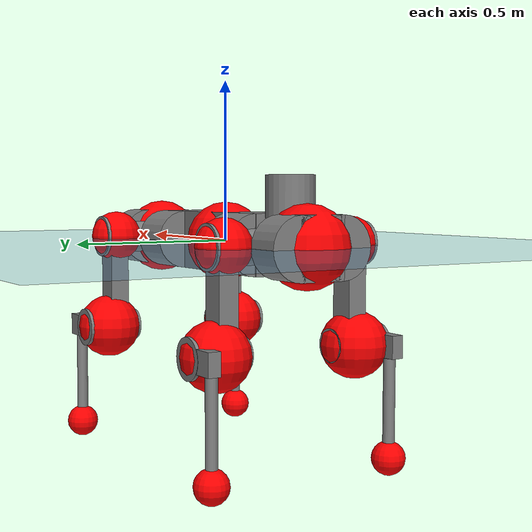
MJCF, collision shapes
<mujoco model="anymal_c">
  <compiler angle="radian" assetdir="assets" balanceinertia="true" inertiafromgeom="false"/>

  <option timestep="0.005" density="1.2" viscosity="2e-05"/>

  <size nkey="1"/>

  <visual>
    <quality shadowsize="8192"/>
    <map shadowclip="0.5"/>
  </visual>

  <default>
    <default class="/">
      <material specular="0" shininess="0.25"/>
      <geom contype="0" conaffinity="0" group="1" solref="-1000 -80"/>
      <site size="0.01 0.005 0.005" group="5"/>
      <general forcelimited="true" forcerange="-80 80" biastype="affine" gainprm="80" biasprm="0 -80 -2"/>
      <default class="anymal_c">
        <joint armature="0.01" damping="0.01" frictionloss="0.1"/>
        <default class="visual">
          <geom type="mesh" group="2"/>
          <default class="visual_zflip"/>
        </default>
        <default class="collision">
          <geom type="cylinder" group="3"/>
          <default class="foot">
            <geom size="0.03 0 0" type="sphere" condim="6" priority="1" friction="0.8 0.02 0.01" solimp="0.015 1 0.03"/>
          </default>
        </default>
      </default>
      <default class="reward_collision_sphere">
        <geom group="5" rgba="1 0 0 1"/>
      </default>
    </default>
  </default>

  <asset>
    <texture type="skybox" colorspace="auto" name="//unnamed_texture_0" builtin="gradient" rgb1="0.95 0.95 0.95" rgb2="0.95 0.95 0.95" width="100" height="600"/>
    <texture type="2d" colorspace="auto" name="texplane" builtin="checker" rgb1="0.345 0.575 0.748" rgb2="0.345 0.575 0.748" markrgb="1 1 1" width="512" height="512"/>
    <texture type="2d" colorspace="linear" name="base" file="base.png"/>
    <texture type="2d" colorspace="linear" name="top_shell" file="top_shell.png"/>
    <texture type="2d" colorspace="linear" name="bottom_shell" file="bottom_shell.png"/>
    <texture type="2d" colorspace="linear" name="remote" file="remote.png"/>
    <texture type="2d" colorspace="linear" name="hatch" file="hatch.png"/>
    <texture type="2d" colorspace="linear" name="handle" file="handle.png"/>
    <texture type="2d" colorspace="linear" name="face" file="face.png"/>
    <texture type="2d" colorspace="linear" name="battery" file="battery.png"/>
    <texture type="2d" colorspace="linear" name="lidar_cage" file="lidar_cage.png"/>
    <texture type="2d" colorspace="linear" name="depth_camera" file="depth_camera.png"/>
    <texture type="2d" colorspace="linear" name="wide_angle_camera" file="wide_angle_camera.png"/>
    <texture type="2d" colorspace="linear" name="lidar" file="lidar.png"/>
    <texture type="2d" colorspace="linear" name="drive" file="drive.png"/>
    <texture type="2d" colorspace="linear" name="hip_l" file="hip_l.png"/>
    <texture type="2d" colorspace="linear" name="shank_l" file="shank_l.png"/>
    <texture type="2d" colorspace="linear" name="foot" file="foot.png"/>
    <texture type="2d" colorspace="linear" name="thigh" file="thigh.png"/>
    <texture type="2d" colorspace="linear" name="shank_r" file="shank_r.png"/>
    <texture type="2d" colorspace="linear" name="hip_r" file="hip_r.png"/>
    <material name="MatPlane" class="/" texture="texplane" texuniform="true" texrepeat="2 2" specular="0.9" shininess="0.5"/>
    <material name="black_plastic" class="/" rgba="0.007 0.007 0.007 1"/>
    <material name="green" class="/" rgba="0.052 0.178 0.033 1"/>
    <material name="red" class="/" rgba="0.178 0.006 0.005 1"/>
    <material name="yellow" class="/" rgba="0.178 0.119 0.006 1"/>
    <material name="lwl" class="/" rgba="0.8 0.8 0.8 1"/>
    <material name="base" class="/" texture="base"/>
    <material name="top_shell" class="/" texture="top_shell"/>
    <material name="bottom_shell" class="/" texture="bottom_shell"/>
    <material name="hip_l" class="/" texture="hip_l"/>
    <material name="thigh" class="/" texture="thigh"/>
    <material name="shank_l" class="/" texture="shank_l"/>
    <material name="foot" class="/" texture="foot"/>
    <material name="hip_r" class="/" texture="hip_r"/>
    <material name="shank" class="/" texture="shank_r"/>
    <material name="hatch" class="/" texture="hatch"/>
    <material name="remote" class="/" texture="remote"/>
    <material name="handle" class="/" texture="handle"/>
    <material name="face" class="/" texture="face"/>
    <material name="depth_camera" class="/" texture="depth_camera"/>
    <material name="wide_angle_camera" class="/" texture="wide_angle_camera"/>
    <material name="battery" class="/" texture="battery"/>
    <material name="lidar_cage" class="/" texture="lidar_cage"/>
    <material name="lidar" class="/" texture="lidar"/>
    <material name="drive" class="/" texture="drive"/>
    <mesh name="base_0" class="/" file="base_0.obj"/>
    <mesh name="base_1" class="/" file="base_1.obj"/>
    <mesh name="base_2" class="/" file="base_2.obj"/>
    <mesh name="base_3" class="/" file="base_3.obj"/>
    <mesh name="base_4" class="/" file="base_4.obj"/>
    <mesh name="base_5" class="/" file="base_5.obj"/>
    <mesh name="top_shell" class="/" file="top_shell.obj"/>
    <mesh name="bottom_shell" class="/" file="bottom_shell.obj"/>
    <mesh name="remote" class="/" file="remote.obj"/>
    <mesh name="handle" class="/" file="handle.obj"/>
    <mesh name="face" class="/" file="face.obj"/>
    <mesh name="wide_angle_camera" class="/" file="wide_angle_camera.obj"/>
    <mesh name="depth_camera" class="/" file="depth_camera.obj"/>
    <mesh name="battery" class="/" file="battery.obj"/>
    <mesh name="lidar_cage" class="/" file="lidar_cage.obj"/>
    <mesh name="lidar" class="/" file="lidar.obj"/>
    <mesh name="drive" class="/" file="drive.obj"/>
    <mesh name="hip_l" class="/" file="hip_l.obj"/>
    <mesh name="thigh" class="/" file="thigh.obj"/>
    <mesh name="shank_l" class="/" file="shank_l.obj"/>
    <mesh name="foot" class="/" file="foot.obj"/>
    <mesh name="hip_r" class="/" file="hip_r.obj"/>
    <mesh name="hatch" class="/" file="hatch.obj"/>
    <mesh name="shank_r" class="/" file="shank_r.obj"/>
  </asset>

  <worldbody>
    <geom name="floor" class="/" size="100 100 0.125" type="plane" group="0" material="MatPlane"/>
    <light name="toplight_shadow" class="/" pos="0 0 5" dir="0.0990148 0.0990148 -0.990148" type="directional" ambient="0.04 0.04 0.04" diffuse="0.55 0.55 0.55" specular="0.12 0.12 0.12"/>
    <light name="toplight_fill" class="/" pos="0 0 5" dir="0.0990148 0.0990148 -0.990148" type="directional" castshadow="false" ambient="0.04 0.04 0.04" diffuse="0.3 0.3 0.3" specular="0.08 0.08 0.08"/>
    <body name="trunk" childclass="anymal_c" pos="0.000331983 -0.00237715 1.14664e-05" quat="1 -6.24175e-06 -4.6048e-07 4.00865e-05">
      <inertial pos="0.00139123 -0.00265677 0.0536897" quat="0.51072 0.496033 0.497952 0.495136" mass="19.5575" diaginertia="0.623111 0.626394 0.28257"/>
      <joint name="//unnamed_joint_0" type="free" armature="0" damping="0" frictionloss="0"/>
      <geom name="//unnamed_geom_1" class="visual" material="green" mesh="base_0"/>
      <geom name="//unnamed_geom_2" class="visual" material="yellow" mesh="base_1"/>
      <geom name="//unnamed_geom_3" class="visual" material="red" mesh="base_2"/>
      <geom name="//unnamed_geom_4" class="visual" material="black_plastic" mesh="base_3"/>
      <geom name="//unnamed_geom_5" class="visual" material="lwl" mesh="base_4"/>
      <geom name="//unnamed_geom_6" class="visual" material="base" mesh="base_5"/>
      <geom name="trunk_1" class="collision" size="0.296244 0.0715072 0.0919378" type="box"/>
      <geom name="trunk_2" class="collision" size="0.0919378 0.074061" pos="0.217686 0.0703011 0" quat="0.707107 0 0.707107 0"/>
      <geom name="trunk_3" class="collision" size="0.0919378 0.074061" pos="-0.217686 0.0703011 0" quat="0.707107 0 0.707107 0"/>
      <geom name="trunk_4" class="collision" size="0.0919378 0.074061" pos="0.217686 -0.0703011 0" quat="0.707107 0 0.707107 0"/>
      <geom name="trunk_5" class="collision" size="0.0919378 0.074061" pos="-0.217686 -0.0703011 0" quat="0.707107 0 0.707107 0"/>
      <geom name="//unnamed_geom_12" class="visual" material="top_shell" mesh="top_shell"/>
      <geom name="//unnamed_geom_13" class="visual" material="bottom_shell" mesh="bottom_shell"/>
      <geom name="//unnamed_geom_14" class="visual" material="remote" mesh="remote"/>
      <geom name="//unnamed_geom_15" class="visual" material="handle" mesh="handle"/>
      <geom name="//unnamed_geom_16" class="visual" pos="0.414854 0 0" quat="1 0 0 0" material="face" mesh="face"/>
      <geom name="trunk_6" class="collision" size="0.0561842 0.0715072 0.0919378" pos="0.469901 0 0" type="box"/>
      <geom name="//unnamed_geom_18" class="collision" size="0.0919378 0.0561842" pos="0.469901 0.0703011 0" quat="0.707107 0 0.707107 0"/>
      <geom name="//unnamed_geom_19" class="collision" size="0.0919378 0.0561842" pos="0.469901 -0.0703011 0" quat="0.707107 0 0.707107 0"/>
      <geom name="//unnamed_geom_20" class="visual" pos="0.462047 0 -0.0313808" quat="0.965926 0 0.258819 0" material="depth_camera" mesh="depth_camera"/>
      <geom name="//unnamed_geom_21" class="visual" pos="0.513438 0 0.0158598" material="wide_angle_camera" mesh="wide_angle_camera"/>
      <geom name="//unnamed_geom_22" class="visual_zflip" pos="-0.414854 0 0" quat="0 0 0 1" material="face" mesh="face"/>
      <geom name="trunk_7" class="collision" size="0.0561842 0.0715072 0.0919378" pos="-0.469901 0 0" quat="0 0 0 1" type="box"/>
      <geom name="//unnamed_geom_24" class="collision" size="0.0919378 0.0561842" pos="-0.469901 -0.0703011 0" quat="0 -0.707107 0 0.707107"/>
      <geom name="//unnamed_geom_25" class="collision" size="0.0919378 0.0561842" pos="-0.469901 0.0703011 0" quat="0 -0.707107 0 0.707107"/>
      <geom name="//unnamed_geom_26" class="visual" pos="-0.462047 0 -0.0313808" quat="0 -0.258819 0 0.965926" material="depth_camera" mesh="depth_camera"/>
      <geom name="//unnamed_geom_27" class="visual_zflip" pos="-0.513438 0 0.0158598" quat="0 0 0 1" material="wide_angle_camera" mesh="wide_angle_camera"/>
      <geom name="//unnamed_geom_28" class="visual" material="battery" mesh="battery"/>
      <geom name="//unnamed_geom_29" class="visual" pos="0 0.0768366 0.0303314" quat="0.683013 -0.183013 0.183013 0.683013" material="depth_camera" mesh="depth_camera"/>
      <geom name="//unnamed_geom_30" class="visual" pos="0 -0.0768366 0.0303314" quat="0.683013 0.183013 0.183013 -0.683013" material="depth_camera" mesh="depth_camera"/>
      <geom name="//unnamed_geom_31" class="visual" pos="-0.364311 0 0.0778686" quat="1 0 0 0" material="lidar_cage" mesh="lidar_cage"/>
      <geom name="trunk_8" class="collision" size="0.0715072 0.0612919" pos="-0.364311 0 0.141435"/>
      <geom name="//unnamed_geom_33" class="visual" pos="-0.364311 1.35471e-06 0.150652" quat="0.707107 0 0 -0.707107" material="lidar" mesh="lidar"/>
      <geom name="//unnamed_geom_34" class="visual" pos="0.300156 0.104467 -9.51075e-10" quat="0.258819 0.965926 0 0" material="drive" mesh="drive"/>
      <geom name="//unnamed_geom_35" class="visual" pos="0.300156 -0.104467 9.51075e-10" quat="0.258819 -0.965926 0 0" material="drive" mesh="drive"/>
      <geom name="//unnamed_geom_36" class="visual" pos="-0.300156 0.104467 9.51075e-10" quat="0 0 0.965926 -0.258819" material="drive" mesh="drive"/>
      <geom name="//unnamed_geom_37" class="visual" pos="-0.300156 -0.104467 -9.51075e-10" quat="0 0 -0.965926 -0.258819" material="drive" mesh="drive"/>
      <geom name="//unnamed_geom_38" class="visual" pos="0.116099 0 0.0773389" quat="1 0 0 0" material="hatch" mesh="hatch"/>
      <geom name="//unnamed_geom_39" class="reward_collision_sphere" size="0.122584"/>
      <geom name="//unnamed_geom_40" class="reward_collision_sphere" size="0.122584" pos="0.450384 0 0"/>
      <geom name="//unnamed_geom_41" class="reward_collision_sphere" size="0.122584" pos="-0.450384 0 0"/>
      <site name="imu" pos="0.260368 0.0141694 0.0371689" size="0.0102153"/>
      <camera name="track" pos="0 -2.0086 0" quat="0.707107 0.707107 0 0" mode="trackcom"/>
      <camera name="ego_camera" pos="0.450384 0 -0.0423775" quat="-0.5 -0.5 0.5 0.5"/>
      <body name="LF_HIP" pos="0.302434 0.10745 0.00284896" quat="0.258308 0.966062 0.00103757 -2.1263e-06">
        <inertial pos="0.0574389 -0.014953 -0.00816459" quat="-0.12732 0.709295 -0.135003 0.680048" mass="2.85988" diaginertia="0.00587282 0.00481877 0.00440387"/>
        <joint name="LF_HAA" pos="0 0 0" axis="0.999996 -0.00249967 -0.00150383" range="-0.669521 0.502456" armature="0.00988127" damping="0" frictionloss="0.111461"/>
        <geom name="//unnamed_geom_42" class="visual" pos="0 -5.59474e-05 9.18932e-06" quat="0.258819 -0.965926 0 0" material="hip_l" mesh="hip_l"/>
        <geom name="//unnamed_geom_43" class="visual" pos="0.0599511 -0.0727086 -0.0423861" quat="0.183013 -0.683013 0.683013 0.183013" material="drive" mesh="drive"/>
        <geom name="//unnamed_geom_44" class="collision" size="0.0510765 0.0715072" pos="0.0599511 -0.0120113 -0.00731541" quat="-0.353553 -0.612372 0.612372 -0.353553"/>
        <body name="LF_THIGH" pos="0.0600576 -0.0706932 -0.0439221" quat="0.183799 -0.68253 0.683407 0.182552">
          <inertial pos="0.0331336 0.00144619 -0.261001" quat="0.992617 -0.0179233 -0.0815221 0.0880069" mass="3.27213" diaginertia="0.0305367 0.0308113 0.00567899"/>
          <joint name="LF_HFE" pos="0 0 0" axis="0.99993 0.003209 -0.0113678" range="-3.13791 3.19378" armature="0.011511" damping="0.0015687" frictionloss="0.10053"/>
          <geom name="//unnamed_geom_45" class="visual" pos="-6.86056e-05 -1.08106e-07 0" quat="0.707107 0 0 -0.707107" material="thigh" mesh="thigh"/>
          <geom name="//unnamed_geom_46" class="collision" size="0.0663995 0.0408612" pos="0.0400342 0 0" quat="0.5 0.5 -0.5 -0.5"/>
          <geom name="//unnamed_geom_47" class="collision" size="0.0383074 0.0306459 0.144357" pos="0.0300256 0 -0.149713" quat="0.707107 0 0 -0.707107" type="box"/>
          <geom name="//unnamed_geom_48" class="visual" pos="0.100386 0 -0.301939" quat="1 0 0 0" material="drive" mesh="drive"/>
          <geom name="//unnamed_geom_49" class="collision" size="0.0510765 0.0715072" pos="0.0303259 0 -0.301939" quat="0.707107 0 0.707107 0"/>
          <geom name="//unnamed_geom_50" class="reward_collision_sphere" size="0.0817225" pos="0.0250213 0 0"/>
          <body name="LF_SHANK" pos="0.101394 -0.00290498 -0.302535" quat="1 1.54231e-05 -0.000351892 -0.00043358">
            <inertial pos="0.00719596 -0.0613997 -0.088126" quat="0.993007 -0.115082 -0.0021459 -0.0262296" mass="0.628322" diaginertia="0.00987038 0.00971835 0.00143739"/>
            <joint name="LF_KFE" pos="0 0 0" axis="1 -0.00050477 -0.000140862" range="-3.19373 3.13588" armature="0.00942674" damping="0.00814249" frictionloss="0.101406"/>
            <geom name="//unnamed_geom_51" class="visual" pos="-2.23708e-05 -0.000119282 0" quat="0.707107 0 0 -0.707107" material="shank_l" mesh="shank_l"/>
            <geom name="LF_kfe_act" class="collision" size="0.0612919 0.0204306" pos="0.0200171 0 0" quat="0.5 0.5 -0.5 -0.5"/>
            <geom name="//unnamed_geom_53" class="collision" size="0.058737 0.0344767 0.0194091" pos="0.0200171 -0.0577464 0" quat="0.5 0.5 -0.5 -0.5" type="box"/>
            <geom name="//unnamed_geom_54" class="visual" pos="0.0130611 -0.0883668 -0.358058" quat="0.382683 0 0 -0.92388" material="foot" mesh="foot"/>
            <geom name="LF_calf" class="collision" size="0.0178768 0.144293" pos="0.0130611 -0.0883284 -0.179029" quat="0.707107 0 0 -0.707107"/>
            <geom name="LF_foot" class="foot" size="0.0303121" pos="0.0130611 -0.0883284 -0.33422" quat="0.707107 0 0 -0.707107"/>
            <geom name="//unnamed_geom_57" class="reward_collision_sphere" size="0.102153" pos="-0.0500427 0 0"/>
            <geom name="//unnamed_geom_58" class="reward_collision_sphere" size="0.0510765" pos="0.0130611 -0.0883284 -0.33422"/>
            <site name="LF_foot" class="foot" pos="0.0130611 -0.0883284 -0.33422" quat="0.707107 0 0 -0.707107" size="0.0102153"/>
          </body>
        </body>
      </body>
      <body name="RF_HIP" pos="0.301241 -0.106042 0.00047478" quat="0.258807 -0.965929 -3.73772e-05 -0.000415861">
        <inertial pos="0.0573454 0.0145649 -0.00996494" quat="0.135148 0.679399 0.125842 0.710152" mass="2.86897" diaginertia="0.0059526 0.00487849 0.00453489"/>
        <joint name="RF_HAA" pos="0 0 0" axis="0.99994 0.00691727 0.00849413" range="-0.489301 0.715915" armature="0.00976841" damping="0.0056935" frictionloss="0.0994978"/>
        <geom name="//unnamed_geom_59" class="visual" pos="0 5.5947e-05 9.1893e-06" quat="0.258819 0.965926 0 0" material="hip_r" mesh="hip_r"/>
        <geom name="//unnamed_geom_60" class="visual" pos="0.0599511 0.0727086 -0.0423861" quat="0.183013 0.683013 0.683013 -0.183013" material="drive" mesh="drive"/>
        <geom name="//unnamed_geom_61" class="collision" size="0.0510765 0.0715072" pos="0.0599511 0.0120113 -0.00731541" quat="-0.353553 0.612372 0.612372 0.353553"/>
        <body name="RF_THIGH" pos="0.062907 0.075155 -0.043642" quat="0.182856 0.682803 0.683162 -0.183394">
          <inertial pos="0.0303704 -0.00261372 -0.260534" quat="0.993117 -0.0021463 -0.0745877 0.0902813" mass="3.46523" diaginertia="0.0314189 0.0314734 0.00578197"/>
          <joint name="RF_HFE" pos="0 0 0" axis="1 -0.000230985 -0.000360362" range="-3.19759 3.13882" armature="0.0100919" damping="0.0048609" frictionloss="0.101737"/>
          <geom name="//unnamed_geom_62" class="visual" pos="-6.86056e-05 -1.08106e-07 0" quat="0.707107 0 0 -0.707107" material="thigh" mesh="thigh"/>
          <geom name="//unnamed_geom_63" class="collision" size="0.0663995 0.0408612" pos="0.0400342 0 0" quat="0.5 0.5 0.5 0.5"/>
          <geom name="//unnamed_geom_64" class="collision" size="0.0383074 0.0306459 0.144357" pos="0.0300256 0 -0.149713" quat="0.707107 0 0 0.707107" type="box"/>
          <geom name="//unnamed_geom_65" class="visual" pos="0.100386 0 -0.301939" quat="1 0 0 0" material="drive" mesh="drive"/>
          <geom name="//unnamed_geom_66" class="collision" size="0.0510765 0.0715072" pos="0.0303259 0 -0.301939" quat="0.707107 0 0.707107 0"/>
          <geom name="//unnamed_geom_67" class="reward_collision_sphere" size="0.0817225" pos="0.0250213 0 0"/>
          <body name="RF_SHANK" pos="0.0976313 -0.00113762 -0.303285" quat="0.999999 -0.00134608 0.000181161 0.000224998">
            <inertial pos="0.00549444 0.0613115 -0.0832739" quat="0.992278 0.12206 0.00120253 0.0220168" mass="0.628257" diaginertia="0.0100789 0.00943861 0.00148141"/>
            <joint name="RF_KFE" pos="0 0 0" axis="0.999897 -0.000252223 0.0143258" range="-3.15793 3.13055" armature="0.0115446" damping="0.023858" frictionloss="0.0886341"/>
            <geom name="//unnamed_geom_68" class="visual" pos="-2.23707e-05 0.000119282 0" quat="0.707107 0 0 0.707107" material="shank" mesh="shank_r"/>
            <geom name="RF_kfe_act" class="collision" size="0.0612919 0.0204306" pos="0.0200171 0 0" quat="0.5 0.5 0.5 0.5"/>
            <geom name="//unnamed_geom_70" class="collision" size="0.058737 0.0344767 0.0194091" pos="0.0200171 0.0577464 0" quat="0.5 0.5 0.5 0.5" type="box"/>
            <geom name="//unnamed_geom_71" class="visual" pos="0.0130611 0.0883668 -0.358058" quat="0.382683 0 0 0.92388" material="foot" mesh="foot"/>
            <geom name="RF_calf" class="collision" size="0.0178768 0.144293" pos="0.0130611 0.0883284 -0.179029" quat="0.707107 0 0 0.707107"/>
            <geom name="RF_foot" class="foot" size="0.0273964" pos="0.0130611 0.0883284 -0.33422" quat="0.707107 0 0 0.707107"/>
            <geom name="//unnamed_geom_74" class="reward_collision_sphere" size="0.102153" pos="-0.0500427 0 0"/>
            <geom name="//unnamed_geom_75" class="reward_collision_sphere" size="0.0510765" pos="0.0130611 0.0883284 -0.33422"/>
            <site name="RF_foot" class="foot" pos="0.0130611 0.0883284 -0.33422" quat="0.707107 0 0 0.707107" size="0.0102153"/>
          </body>
        </body>
      </body>
      <body name="LH_HIP" pos="-0.300876 0.103915 -0.00056296" quat="8.72183e-05 -3.59301e-05 0.96593 -0.258802">
        <inertial pos="0.0566821 0.0125873 -0.00789674" quat="0.131243 0.680651 0.127128 0.709456" mass="2.93182" diaginertia="0.00587713 0.00503337 0.00440928"/>
        <joint name="LH_HAA" pos="0 0 0" axis="0.99998 -0.00612045 -0.00149363" range="-0.514436 0.72523" armature="0.0103937" damping="0.0119367" frictionloss="0.0969435"/>
        <geom name="//unnamed_geom_76" class="visual" pos="0 5.5947e-05 9.1893e-06" quat="-0.258819 -0.965926 0 0" material="hip_r" mesh="hip_r"/>
        <geom name="//unnamed_geom_77" class="visual" pos="0.0599511 0.0727086 -0.0423861" quat="0.183013 0.683013 0.683013 -0.183013" material="drive" mesh="drive"/>
        <geom name="//unnamed_geom_78" class="collision" size="0.0510765 0.0715072" pos="0.0599511 0.0120113 -0.00731541" quat="-0.353553 0.612372 0.612372 0.353553"/>
        <body name="LH_THIGH" pos="0.0574034 0.0734066 -0.0462876" quat="0.183161 0.683021 0.682876 -0.183345">
          <inertial pos="0.0305954 0.000358291 -0.26283" quat="0.992371 -0.00116244 -0.0853638 0.0889427" mass="3.3611" diaginertia="0.0306167 0.0304096 0.00555861"/>
          <joint name="LH_HFE" pos="0 0 0" axis="0.999996 -0.000745854 0.00263636" range="-3.19112 3.16942" armature="0.0103218" damping="0" frictionloss="0.102552"/>
          <geom name="//unnamed_geom_79" class="visual" pos="-6.86056e-05 -1.08106e-07 0" quat="0.707107 0 0 -0.707107" material="thigh" mesh="thigh"/>
          <geom name="//unnamed_geom_80" class="collision" size="0.0663995 0.0408612" pos="0.0400342 0 0" quat="0.5 0.5 -0.5 -0.5"/>
          <geom name="//unnamed_geom_81" class="collision" size="0.0383074 0.0306459 0.144357" pos="0.0300256 0 -0.149713" quat="0.707107 0 0 -0.707107" type="box"/>
          <geom name="//unnamed_geom_82" class="visual" pos="0.100386 0 -0.301939" quat="1 0 0 0" material="drive" mesh="drive"/>
          <geom name="//unnamed_geom_83" class="collision" size="0.0510765 0.0715072" pos="0.0303259 0 -0.301939" quat="0.707107 0 0.707107 0"/>
          <geom name="//unnamed_geom_84" class="reward_collision_sphere" size="0.0817225" pos="0.0250213 0 0"/>
          <body name="LH_SHANK" pos="0.0987968 -0.00242697 -0.302881" quat="1 -6.76907e-05 -1.94503e-06 0.00039167">
            <inertial pos="0.00546099 0.0613137 -0.0844887" quat="0.993064 0.115256 -0.00178912 0.0231663" mass="0.649776" diaginertia="0.0107315 0.00954601 0.00152389"/>
            <joint name="LH_KFE" pos="0 0 0" axis="0.999881 -0.015037 0.00347293" range="-3.0917 3.09397" armature="0.0105272" damping="0.00514432" frictionloss="0.101"/>
            <geom name="//unnamed_geom_85" class="visual" pos="-2.23707e-05 0.000119282 0" quat="-0.707107 0 0 -0.707107" material="shank" mesh="shank_r"/>
            <geom name="LH_kfe_act" class="collision" size="0.0612919 0.0204306" pos="0.0200171 0 0" quat="0.5 0.5 -0.5 -0.5"/>
            <geom name="//unnamed_geom_87" class="collision" size="0.058737 0.0344767 0.0194091" pos="0.0200171 0.0577464 0" quat="0.5 0.5 -0.5 -0.5" type="box"/>
            <geom name="//unnamed_geom_88" class="visual" pos="0.0130611 0.0883668 -0.358058" quat="-0.382683 0 0 -0.92388" material="foot" mesh="foot"/>
            <geom name="LH_calf" class="collision" size="0.0178768 0.144293" pos="0.0130611 0.0883284 -0.179029" quat="0.707107 0 0 -0.707107"/>
            <geom name="LH_foot" class="foot" size="0.0318781" pos="0.0130611 0.0883284 -0.33422" quat="0.707107 0 0 -0.707107"/>
            <geom name="//unnamed_geom_91" class="reward_collision_sphere" size="0.102153" pos="-0.0500427 0 0"/>
            <geom name="//unnamed_geom_92" class="reward_collision_sphere" size="0.0510765" pos="0.0130611 0.0883284 -0.33422"/>
            <site name="LH_foot" class="foot" pos="0.0130611 0.0883284 -0.33422" quat="0.707107 0 0 -0.707107" size="0.0102153"/>
          </body>
        </body>
      </body>
      <body name="RH_HIP" pos="-0.301149 -0.10218 0.00017824" quat="0.000714237 0.000491077 -0.965715 -0.259603">
        <inertial pos="0.0557269 -0.0128345 -0.0107986" quat="-0.132973 0.70828 -0.135244 0.679975" mass="3.0287" diaginertia="0.00613986 0.00507831 0.00460957"/>
        <joint name="RH_HAA" pos="0 0 0" axis="0.999923 -0.0112808 0.00509096" range="-0.710424 0.437735" armature="0.0101618" damping="0.0149033" frictionloss="0.100982"/>
        <geom name="//unnamed_geom_93" class="visual" pos="0 -5.59474e-05 9.18932e-06" quat="-0.258819 0.965926 0 0" material="hip_l" mesh="hip_l"/>
        <geom name="//unnamed_geom_94" class="visual" pos="0.0599511 -0.0727086 -0.0423861" quat="-0.183013 0.683013 -0.683013 -0.183013" material="drive" mesh="drive"/>
        <geom name="//unnamed_geom_95" class="collision" size="0.0510765 0.0715072" pos="0.0599511 -0.0120113 -0.00731541" quat="0.353553 0.612372 -0.612372 0.353553"/>
        <body name="RH_THIGH" pos="0.0604595 -0.0706779 -0.0436503" quat="-0.183012 0.681969 -0.68396 -0.183368">
          <inertial pos="0.0310289 -0.00275097 -0.258641" quat="0.992852 -0.0057299 -0.0858004 0.082771" mass="3.23871" diaginertia="0.0298888 0.0302254 0.0054833"/>
          <joint name="RH_HFE" pos="0 0 0" axis="0.999915 0.00284048 -0.0127047" range="-3.16088 3.17047" armature="0.00993724" damping="0.0119917" frictionloss="0.097254"/>
          <geom name="//unnamed_geom_96" class="visual" pos="-6.86056e-05 -1.08106e-07 0" quat="0.707107 0 0 -0.707107" material="thigh" mesh="thigh"/>
          <geom name="//unnamed_geom_97" class="collision" size="0.0663995 0.0408612" pos="0.0400342 0 0" quat="0.5 0.5 0.5 0.5"/>
          <geom name="//unnamed_geom_98" class="collision" size="0.0383074 0.0306459 0.144357" pos="0.0300256 0 -0.149713" quat="0.707107 0 0 0.707107" type="box"/>
          <geom name="//unnamed_geom_99" class="visual" pos="0.100386 0 -0.301939" quat="1 0 0 0" material="drive" mesh="drive"/>
          <geom name="//unnamed_geom_100" class="collision" size="0.0510765 0.0715072" pos="0.0303259 0 -0.301939" quat="0.707107 0 0.707107 0"/>
          <geom name="//unnamed_geom_101" class="reward_collision_sphere" size="0.0817225" pos="0.0250213 0 0"/>
          <body name="RH_SHANK" pos="0.0977509 -0.001134 -0.303221" quat="1 0.000103226 -1.24586e-05 5.52979e-05">
            <inertial pos="0.00802589 -0.0615467 -0.0846263" quat="0.992916 -0.115759 -0.00110143 -0.026764" mass="0.624543" diaginertia="0.0105595 0.00954415 0.00147466"/>
            <joint name="RH_KFE" pos="0 0 0" axis="0.999957 0.0057216 0.00734222" range="-3.17649 3.19012" armature="0.00881443" damping="0.00999623" frictionloss="0.101952"/>
            <geom name="//unnamed_geom_102" class="visual" pos="-2.23708e-05 -0.000119282 0" quat="0.707107 0 0 -0.707107" material="shank_l" mesh="shank_l"/>
            <geom name="RH_kfe_act" class="collision" size="0.0612919 0.0204306" pos="0.0200171 0 0" quat="0.5 0.5 0.5 0.5"/>
            <geom name="//unnamed_geom_104" class="collision" size="0.058737 0.0344767 0.0194091" pos="0.0200171 -0.0577464 0" quat="0.5 0.5 0.5 0.5" type="box"/>
            <geom name="//unnamed_geom_105" class="visual" pos="0.0130611 -0.0883668 -0.358058" quat="0.382683 0 0 -0.92388" material="foot" mesh="foot"/>
            <geom name="RH_calf" class="collision" size="0.0178768 0.144293" pos="0.0130611 -0.0883284 -0.179029" quat="0.707107 0 0 0.707107"/>
            <geom name="RH_foot" class="foot" size="0.029134" pos="0.0130611 -0.0883284 -0.33422" quat="0.707107 0 0 0.707107"/>
            <geom name="//unnamed_geom_108" class="reward_collision_sphere" size="0.102153" pos="-0.0500427 0 0"/>
            <geom name="//unnamed_geom_109" class="reward_collision_sphere" size="0.0510765" pos="0.0130611 -0.0883284 -0.33422"/>
            <site name="RH_foot" class="foot" pos="0.0130611 -0.0883284 -0.33422" quat="0.707107 0 0 0.707107" size="0.0102153"/>
          </body>
        </body>
      </body>
    </body>
  </worldbody>

  <contact>
    <pair class="/" geom1="floor" geom2="LF_foot" name="//unnamed_contact_0"/>
    <pair class="/" geom1="floor" geom2="RF_foot" name="//unnamed_contact_1"/>
    <pair class="/" geom1="floor" geom2="LH_foot" name="//unnamed_contact_2"/>
    <pair class="/" geom1="floor" geom2="RH_foot" name="//unnamed_contact_3"/>
  </contact>

  <actuator>
    <general name="LF_HAA" class="/" joint="LF_HAA" forcerange="-89.6152 89.6152" gainprm="87.2388" biasprm="0 -87.2388 -2.08596"/>
    <general name="LF_HFE" class="/" joint="LF_HFE" forcerange="-76.9808 76.9808" gainprm="87.2388" biasprm="0 -87.2388 -2.08596"/>
    <general name="LF_KFE" class="/" joint="LF_KFE" forcerange="-85.5706 85.5706" gainprm="87.2388" biasprm="0 -87.2388 -2.08596"/>
    <general name="RF_HAA" class="/" joint="RF_HAA" forcerange="-90.6629 90.6629" gainprm="87.2388" biasprm="0 -87.2388 -2.08596"/>
    <general name="RF_HFE" class="/" joint="RF_HFE" forcerange="-91.5492 91.5492" gainprm="87.2388" biasprm="0 -87.2388 -2.08596"/>
    <general name="RF_KFE" class="/" joint="RF_KFE" forcerange="-88.0698 88.0698" gainprm="87.2388" biasprm="0 -87.2388 -2.08596"/>
    <general name="LH_HAA" class="/" joint="LH_HAA" forcerange="-84.7149 84.7149" gainprm="87.2388" biasprm="0 -87.2388 -2.08596"/>
    <general name="LH_HFE" class="/" joint="LH_HFE" forcerange="-78.6368 78.6368" gainprm="87.2388" biasprm="0 -87.2388 -2.08596"/>
    <general name="LH_KFE" class="/" joint="LH_KFE" forcerange="-80.6629 80.6629" gainprm="87.2388" biasprm="0 -87.2388 -2.08596"/>
    <general name="RH_HAA" class="/" joint="RH_HAA" forcerange="-73.7642 73.7642" gainprm="87.2388" biasprm="0 -87.2388 -2.08596"/>
    <general name="RH_HFE" class="/" joint="RH_HFE" forcerange="-83.4996 83.4996" gainprm="87.2388" biasprm="0 -87.2388 -2.08596"/>
    <general name="RH_KFE" class="/" joint="RH_KFE" forcerange="-81.6724 81.6724" gainprm="87.2388" biasprm="0 -87.2388 -2.08596"/>
  </actuator>

  <sensor>
    <gyro site="imu" name="imu_angular_velocity"/>
    <velocimeter site="imu" name="imu_linear_velocity"/>
    <framelinvel objtype="site" objname="LF_foot" name="LF_foot_global_linear_velocity"/>
    <framelinvel objtype="site" objname="RF_foot" name="RF_foot_global_linear_velocity"/>
    <framelinvel objtype="site" objname="LH_foot" name="LH_foot_global_linear_velocity"/>
    <framelinvel objtype="site" objname="RH_foot" name="RH_foot_global_linear_velocity"/>
  </sensor>

  <keyframe>
    <key name="home" qpos="0 0 0.55 1 0 0 0 0 0.4 -0.8 0 -0.4 0.8 0 -0.4 0.8 0 0.4 -0.8"/>
  </keyframe>
</mujoco>
